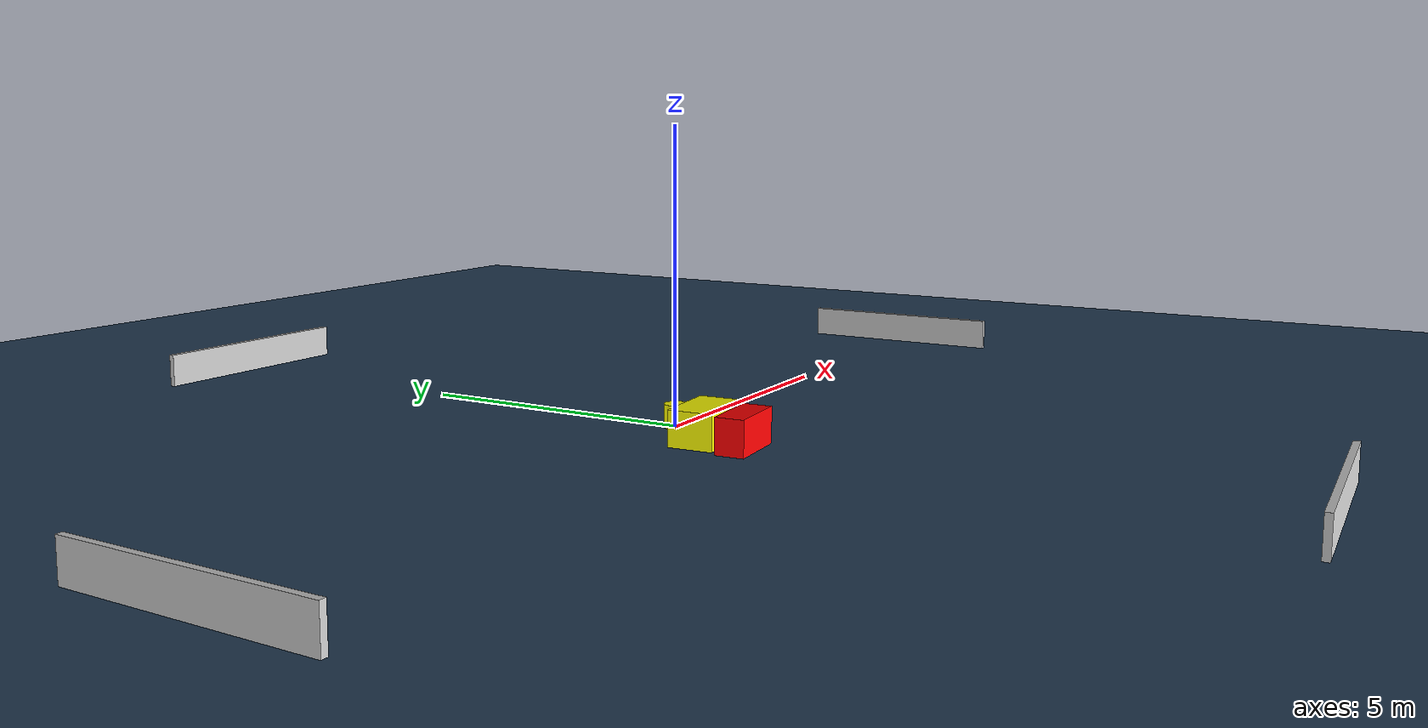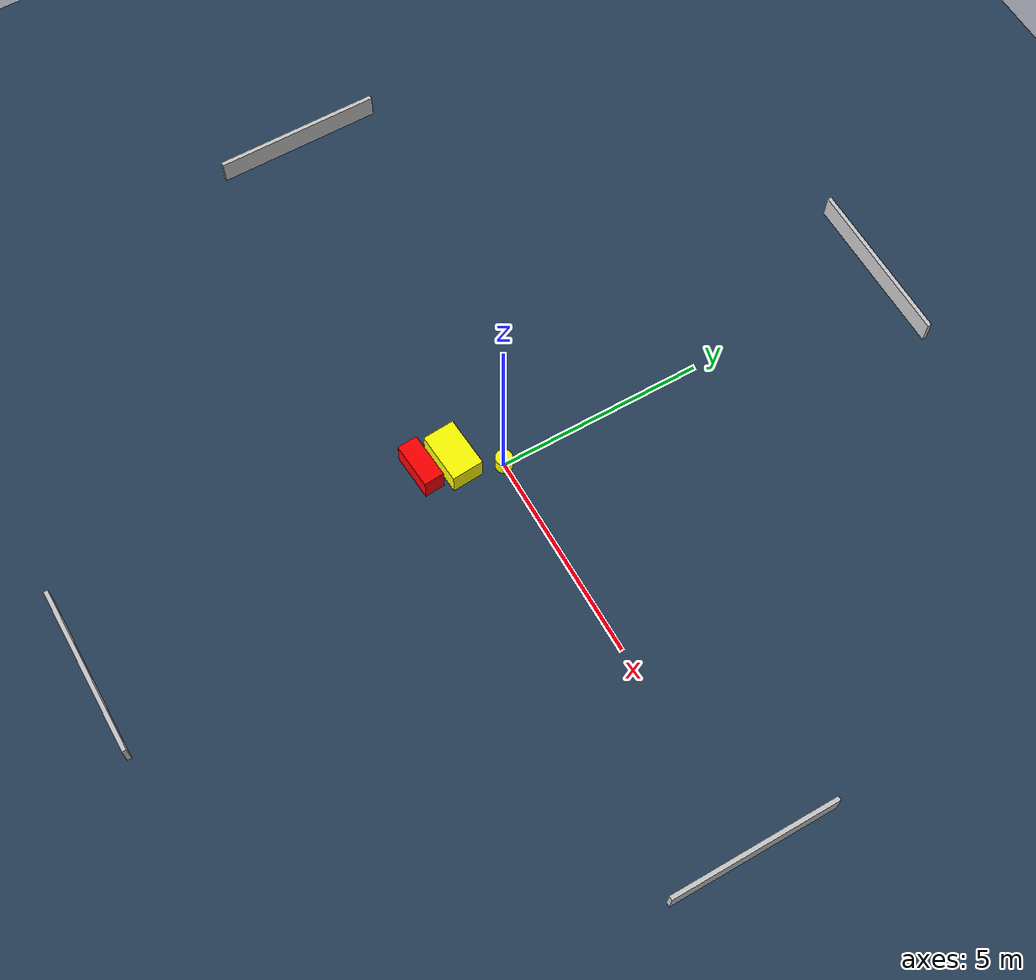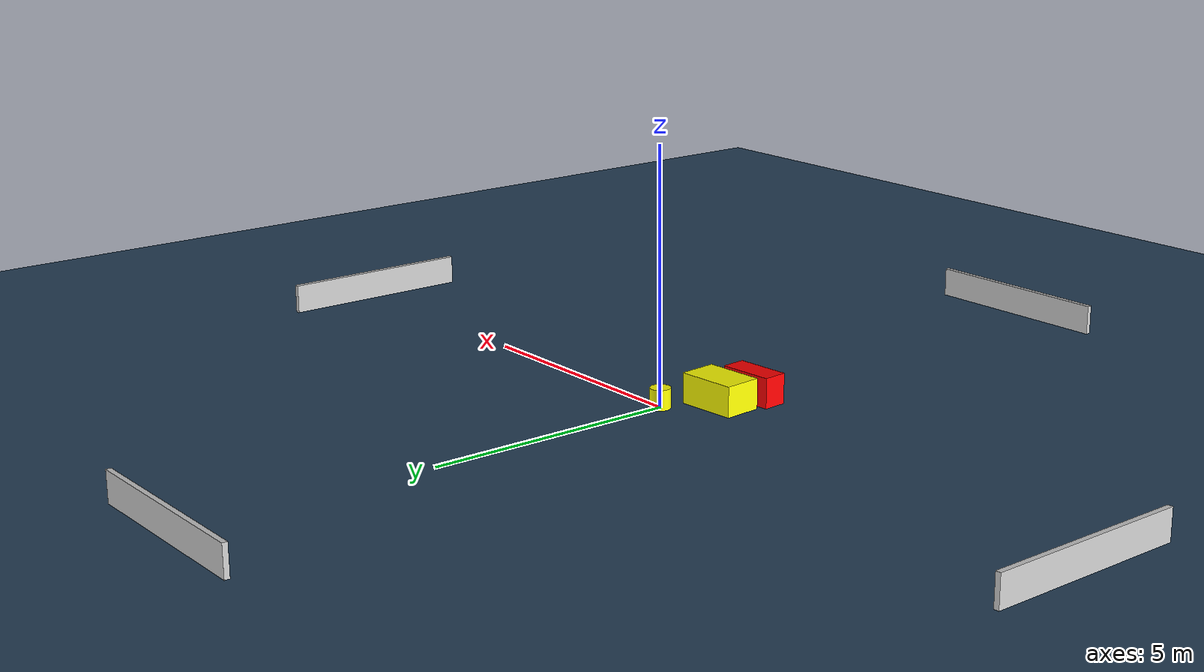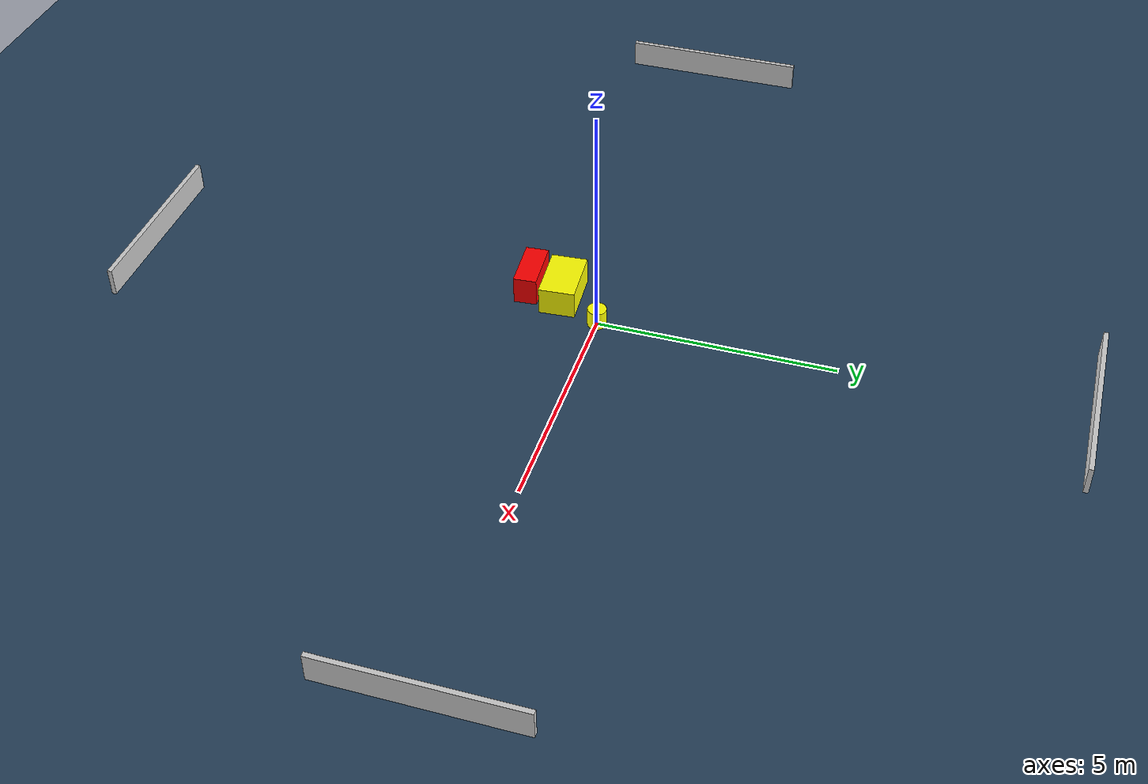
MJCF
<?xml version="1.0" ?>
<mujoco model="generated_environment">
  <option timestep="0.01" integrator="RK4" cone="elliptic"/>
  <default>
    <geom density="1"/>
  </default>
  <asset>
    <texture builtin="gradient" height="3072" name="skybox" rgb1="0.3 0.5 0.7" rgb2="0 0 0" type="skybox" width="512"/>
    <texture builtin="checker" height="300" name="groundplane" rgb1="0.2 0.3 0.4" rgb2="0.1 0.2 0.3" type="2d" width="300"/>
    <material name="groundplane" reflectance="0.2" texrepeat="5 5" texture="groundplane"/>
  </asset>
  <worldbody>
    <light dir="0 0 -1" directional="true" pos="0 0 1.5"/>
    <geom condim="3" friction="0.5 0.005 0.001" material="groundplane" name="floor" pos="0 0 0" size="0 0 0.05" type="plane"/>
    <body name="walls">
      <geom name="wall_1" condim="4" pos="-10.0 0.0 0.3" rgba="0.800000011920929 0.800000011920929 0.800000011920929 1.0" size="0.05 2.0 0.3" type="box"/>
      <geom name="wall_2" condim="4" pos="10.0 0.0 0.3" rgba="0.800000011920929 0.800000011920929 0.800000011920929 1.0" size="0.05 2.0 0.3" type="box"/>
      <geom name="wall_3" condim="4" pos="0.0 -10.0 0.3" rgba="0.800000011920929 0.800000011920929 0.800000011920929 1.0" size="2.0 0.05 0.3" type="box"/>
      <geom name="wall_4" condim="4" pos="0.0 10.0 0.3" rgba="0.800000011920929 0.800000011920929 0.800000011920929 1.0" size="2.0 0.05 0.3" type="box"/>
    </body>
    <body name="robot">
      <joint name="joint_x" type="slide" pos="0 0 0" axis="1 0 0"/>
      <joint name="joint_y" type="slide" pos="0 0 0" axis="0 1 0"/>
      <geom name="robot" type="cylinder" pos="0.0 0.0 0.2" size="0.2 0.2 0.0" mass="5.0" friction="1.0 0.005 0.0001" condim="4" rgba="1.0 1.0 0.0 1.0"/>
    </body>
    <body name="obstacle_1_movable">
      <geom name="obstacle_1_movable" condim="4" pos="-0.6277963653039224 -0.9259649330871903 0.3" euler="0 0 3.9189935595685066" friction="0.0 0.005 0.001" rgba="1.0 1.0 0.0 1.0" size="0.6008005004886028 0.3799004630490296 0.3" type="box" mass="0.1"/>
      <joint type="free"/>
    </body>
    <body name="obstacle_2_static">
      <geom name="obstacle_2_static" condim="4" pos="-0.7544307804591671 -1.6673029552971916 0.3" euler="0 0 94.09290764777298" friction="0.0 0.005 0.001" rgba="1.0 0.0 0.0 1.0" size="0.24223406524611377 0.5487062049384078 0.3" type="box"/>
    </body>
  </worldbody>
  <actuator>
    <motor name="actuator_x" joint="joint_x" gear="1" ctrlrange="-1 1"/>
    <motor name="actuator_y" joint="joint_y" gear="1" ctrlrange="-1 1"/>
  </actuator>
</mujoco>
